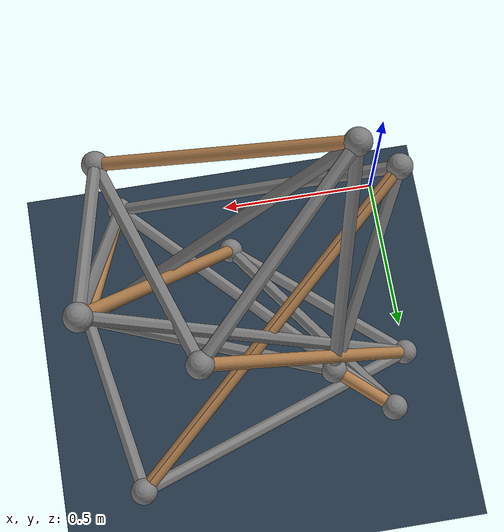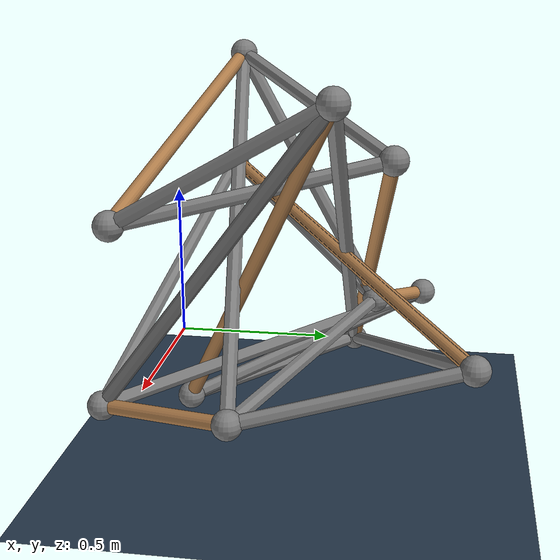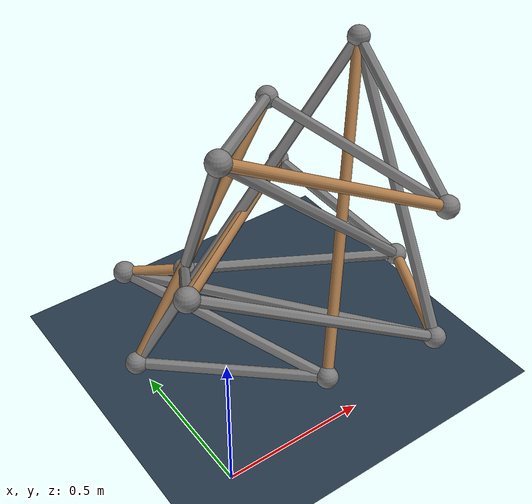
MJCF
<mujoco model="best">

    <statistic extent="2" meansize=".05"/>

    <visual>
        <rgba haze="0.15 0.25 0.35 1"/>
        <quality shadowsize="2048"/>
        <map stiffness="700" shadowscale="0.5" fogstart="10" fogend="15" zfar="40" haze="0.3"/>
    </visual>

    <asset>
        <texture type="skybox" builtin="gradient" rgb1=".4 .6 .8" rgb2="0 0 0" width="800" height="800" mark="random" markrgb="1 1 1"/>
        <texture name="texplane" type="2d" builtin="checker" rgb1=".2 .3 .4" rgb2=".1 0.15 0.2"
            width="512" height="512" mark="cross" markrgb=".8 .8 .8"/>

        <material name="matplane" reflectance="0.3" texture="texplane" texrepeat="1 1" texuniform="true"/>
    </asset>

    <worldbody>
        <light directional="true" diffuse=".8 .8 .8" specular=".2 .2 .2" pos="0 0 5" dir="0 0 -1"/>
        <geom name="floor"  pos="0 0 -0.1" size="10 10 0.125" type="plane" material="matplane" condim="3" friction=".9 .05 .05"/>
    </worldbody>

    <visual>
        <headlight ambient=".4 .4 .4" diffuse=".8 .8 .8" specular="0.1 0.1 0.1"/>
        <map znear=".01"/>
        <quality shadowsize="2048"/>
    </visual>

    <option timestep="0.002" iterations="100" solver="Newton" integrator="RK4" jacobian="dense" gravity = "0 0 -9.8" viscosity="0"/>

    <size njmax="5000" nconmax="500" nstack="5000000"/>

    <asset>
        <material name="rod" rgba=".7 .5 .3 1"/>
    </asset>

    <default>
        <motor ctrllimited="false" ctrlrange="-30 30"/>
        <tendon stiffness="10" damping="0.01" springlength=".5" frictionloss=".2"/>
        <geom size="0.02" mass=".1"/>
        <site size="0.04"/>
        <camera pos="0 -10 0"/>
    </default>

    <worldbody>

        <body name="bar1">
            <geom name="bar1" type="capsule" fromto="0.8843412289070027 0.05892671840474695 0.6344176415786287 0.16475368340859387 0.2633338076063446 0.9775580028226235" material="rod"/>
            <site name="b11" pos="0.8843412289070027 0.05892671840474695 0.6344176415786287"/>
            <site name="b1" pos="0.16475368340859387 0.2633338076063446 0.9775580028226235"/>
            <joint name="r1" type="free" pos="0 0 0" limited="false" damping="0" armature="0" stiffness="0.2"/>
        </body>

        <body name="bar2">
            <geom name="bar2" type="capsule" fromto="0.9966831818815666 0.3729790829877805 0.16915414762891479 0.8485737709528791 0.0 0.12251608588251794" material="rod"/>
            <site name="b0" pos="0.9966831818815666 0.3729790829877805 0.16915414762891479"/>
            <site name="b10" pos="0.8485737709528791 0.0 0.12251608588251794"/>
            <joint name="r2" type="free" pos="0 0 0" limited="false" damping="0" armature="0" stiffness="0.2"/>
        </body>

        <body name="bar3">
            <geom name="bar3" type="capsule" fromto="0.0 0.5970024490387825 0.004272710327211771 0.6746588483984155 0.7494955682705033 0.7745566520353047" material="rod"/>
            <site name="b4" pos="0.0 0.5970024490387825 0.004272710327211771"/>
            <site name="b5" pos="0.6746588483984155 0.7494955682705033 0.7745566520353047"/>
            <joint name="r3" type="free" pos="0 0 0" limited="false" damping="0" armature="0" stiffness="0.2"/>
        </body>

        <body name="bar4">
            <geom name="bar4" type="capsule" fromto="0.505312732354588 0.15481163876629922 0.0 0.9671355796284163 0.6264151756484467 0.9667962637231534" material="rod"/>
            <site name="b9" pos="0.505312732354588 0.15481163876629922 0.0"/>
            <site name="b3" pos="0.9671355796284163 0.6264151756484467 0.9667962637231534"/>
            <joint name="r4" type="free" pos="0 0 0" limited="false" damping="0" armature="0" stiffness="0.2"/>
        </body>

        <body name="bar5">
            <geom name="bar5" type="capsule" fromto="0.09959212477695478 0.822228406052752 0.2174795338457558 0.26505372287154383 0.6832716324278395 0.24665742153742742" material="rod"/>
            <site name="b8" pos="0.09959212477695478 0.822228406052752 0.2174795338457558"/>
            <site name="b6" pos="0.26505372287154383 0.6832716324278395 0.24665742153742742"/>
            <joint name="r5" type="free" pos="0 0 0" limited="false" damping="0" armature="0" stiffness="0.2"/>
        </body>

        <body name="bar6">
            <geom name="bar6" type="capsule" fromto="0.0 0.19878707186181988 0.6079679648243265 0.8915738415772558 0.9735043003364968 0.30655445448278507" material="rod"/>
            <site name="b2" pos="0.0 0.19878707186181988 0.6079679648243265"/>
            <site name="b7" pos="0.8915738415772558 0.9735043003364968 0.30655445448278507"/>
            <joint name="r6" type="free" pos="0 0 0" limited="false" damping="0" armature="0" stiffness="0.2"/>
        </body>

    </worldbody>

    <tendon>

        <spatial name="S0" width="0.02">
            <site site="b2"/>
            <site site="b7"/>
        </spatial>

        <spatial name="S1" width="0.02">
            <site site="b4"/>
            <site site="b9"/>
        </spatial>

        <spatial name="S2" width="0.02">
            <site site="b5"/>
            <site site="b11"/>
        </spatial>

        <spatial name="S3" width="0.02">
            <site site="b9"/>
            <site site="b8"/>
        </spatial>

        <spatial name="S4" width="0.02">
            <site site="b4"/>
            <site site="b7"/>
        </spatial>

        <spatial name="S5" width="0.02">
            <site site="b3"/>
            <site site="b4"/>
        </spatial>

        <spatial name="S6" width="0.02">
            <site site="b0"/>
            <site site="b1"/>
        </spatial>

        <spatial name="S7" width="0.02">
            <site site="b8"/>
            <site site="b10"/>
        </spatial>

        <spatial name="S8" width="0.02">
            <site site="b10"/>
            <site site="b3"/>
        </spatial>

        <spatial name="S9" width="0.02">
            <site site="b6"/>
            <site site="b2"/>
        </spatial>

        <spatial name="S10" width="0.02">
            <site site="b6"/>
            <site site="b1"/>
        </spatial>

        <spatial name="S11" width="0.02">
            <site site="b1"/>
            <site site="b5"/>
        </spatial>

        <spatial name="S12" width="0.02">
            <site site="b10"/>
            <site site="b2"/>
        </spatial>

        <spatial name="S13" width="0.02">
            <site site="b9"/>
            <site site="b8"/>
        </spatial>

        <spatial name="S14" width="0.02">
            <site site="b5"/>
            <site site="b11"/>
        </spatial>

        <spatial name="S15" width="0.02">
            <site site="b7"/>
            <site site="b0"/>
        </spatial>

        <spatial name="S16" width="0.02">
            <site site="b0"/>
            <site site="b6"/>
        </spatial>

        <spatial name="S17" width="0.02">
            <site site="b11"/>
            <site site="b3"/>
        </spatial>

    </tendon>

    <actuator>

        <motor tendon="S0" gear="1"/>

        <motor tendon="S1" gear="1"/>

        <motor tendon="S2" gear="1"/>

        <motor tendon="S3" gear="1"/>

        <motor tendon="S4" gear="1"/>

        <motor tendon="S5" gear="1"/>

        <motor tendon="S6" gear="1"/>

        <motor tendon="S7" gear="1"/>

        <motor tendon="S8" gear="1"/>

        <motor tendon="S9" gear="1"/>

        <motor tendon="S10" gear="1"/>

        <motor tendon="S11" gear="1"/>

        <motor tendon="S12" gear="1"/>

        <motor tendon="S13" gear="1"/>

        <motor tendon="S14" gear="1"/>

        <motor tendon="S15" gear="1"/>

        <motor tendon="S16" gear="1"/>

        <motor tendon="S17" gear="1"/>

    </actuator>

</mujoco>
